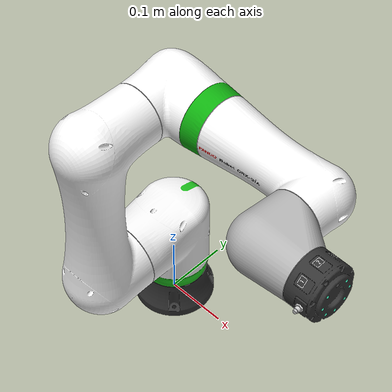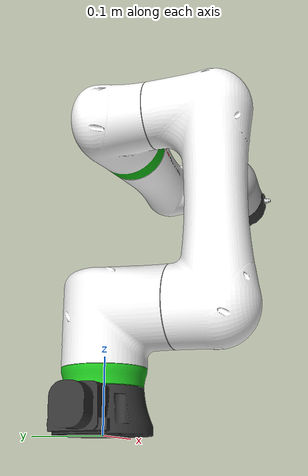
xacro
<?xml version="1.0" ?>
<robot name="crx3ia" xmlns:xacro="http://wiki.ros.org/xacro">
  <xacro:include
    filename="$(find fanuc_crx_description)/urdf/crx3ia_urdf_macro.xacro"
  />

  <link name="world" />
  <link name="ee_link" />
  <xacro:crx3ia parent="world" child="ee_link">
    <origin xyz="0 0 0" rpy="0 0 0" />
  </xacro:crx3ia>
</robot>

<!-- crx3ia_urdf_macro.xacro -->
<!--
SPDX-FileCopyrightText: 2026, FANUC America Corporation
SPDX-FileCopyrightText: 2026, FANUC CORPORATION
SPDX-License-Identifier: Apache-2.0
-->
<!-- URDF for CRX-3iA -->
<robot xmlns:xacro="http://wiki.ros.org/xacro">
  <xacro:macro
    name="crx3ia"
    params="prefix=''
            parent
            *origin
            child"
  >

    <xacro:property name="j1_lower_limit" value="${radians(-200)}" />
    <xacro:property name="j2_lower_limit" value="${radians(-179.999)}" />
    <xacro:property name="j3_lower_limit" value="${radians(-62.7)}" />
    <xacro:property name="j4_lower_limit" value="${radians(-190)}" />
    <xacro:property name="j5_lower_limit" value="${radians(-179.999)}" />
    <xacro:property name="j6_lower_limit" value="${radians(-225)}" />

    <xacro:property name="j1_upper_limit" value="${radians(200)}" />
    <xacro:property name="j2_upper_limit" value="${radians(179.999)}" />
    <xacro:property name="j3_upper_limit" value="${radians(242.7)}" />
    <xacro:property name="j4_upper_limit" value="${radians(190)}" />
    <xacro:property name="j5_upper_limit" value="${radians(179.999)}" />
    <xacro:property name="j6_upper_limit" value="${radians(225)}" />

    <xacro:property name="j1_effort_limit" value="200" />
    <xacro:property name="j2_effort_limit" value="200" />
    <xacro:property name="j3_effort_limit" value="100" />
    <xacro:property name="j4_effort_limit" value="80" />
    <xacro:property name="j5_effort_limit" value="60" />
    <xacro:property name="j6_effort_limit" value="50" />

    <xacro:property name="j1_velocity_limit" value="${radians(130)}" />
    <xacro:property name="j2_velocity_limit" value="${radians(130)}" />
    <xacro:property name="j3_velocity_limit" value="${radians(180)}" />
    <xacro:property name="j4_velocity_limit" value="${radians(225)}" />
    <xacro:property name="j5_velocity_limit" value="${radians(360)}" />
    <xacro:property name="j6_velocity_limit" value="${radians(360)}" />

    <!-- links -->
    <link name="${prefix}base_link">
      <visual>
        <origin xyz="0 0 0" rpy="0 0 0" />
        <geometry>
          <mesh
            filename="package://fanuc_crx_description/meshes/crx3ia/visual/base.dae"
          />
        </geometry>
      </visual>
      <collision>
        <origin xyz="0 0 0" rpy="0 0 0" />
        <geometry>
          <mesh
            filename="package://fanuc_crx_description/meshes/crx3ia/collision/base.stl"
          />
        </geometry>
      </collision>
      <inertial>
        <mass value=" .798" />
        <origin xyz="-.0193 -.00000331  .028" />
        <inertia
          ixx=" .000864"
          ixy="-.000000153"
          ixz=" .0000271"
          iyy=" .00169"
          iyz="-.0000000643"
          izz=" .00211"
        />
      </inertial>
    </link>

    <link name="${prefix}J1_link">
      <visual>
        <origin xyz="0 0 0" rpy="0 0 0" />
        <geometry>
          <mesh
            filename="package://fanuc_crx_description/meshes/crx3ia/visual/j1.dae"
          />
        </geometry>
      </visual>
      <collision>
        <origin xyz="0 0 0" rpy="0 0 0" />
        <geometry>
          <mesh
            filename="package://fanuc_crx_description/meshes/crx3ia/collision/j1.stl"
          />
        </geometry>
      </collision>
      <inertial>
        <mass value=" 1.95" />
        <origin xyz=" .0000000283 -.0201 -.0208" />
        <inertia
          ixx=" .0064"
          ixy="-.00000000462"
          ixz="-.000000000477"
          iyy=" .00508"
          iyz=" .000417"
          izz=" .00468"
        />
      </inertial>
    </link>

    <link name="${prefix}J2_link">
      <visual>
        <origin xyz="0 0 0" rpy="0 0 0" />
        <geometry>
          <mesh
            filename="package://fanuc_crx_description/meshes/crx3ia/visual/j2.dae"
          />
        </geometry>
      </visual>
      <collision>
        <origin xyz="0 0 0" rpy="0 0 0" />
        <geometry>
          <mesh
            filename="package://fanuc_crx_description/meshes/crx3ia/collision/j2.stl"
          />
        </geometry>
      </collision>
      <inertial>
        <mass value=" 4.39" />
        <origin xyz="-.000000223 -.137  .143" />
        <inertia
          ixx=" .0527"
          ixy="-.0000000435"
          ixz="-.0000000196"
          iyy=" .0509"
          iyz="-.00223"
          izz=" .0095"
        />
      </inertial>
    </link>

    <link name="${prefix}J3_link">
      <visual>
        <origin xyz="0 0 0" rpy="0 0 0" />
        <geometry>
          <mesh
            filename="package://fanuc_crx_description/meshes/crx3ia/visual/j3.dae"
          />
        </geometry>
      </visual>
      <collision>
        <origin xyz="0 0 0" rpy="0 0 0" />
        <geometry>
          <mesh
            filename="package://fanuc_crx_description/meshes/crx3ia/collision/j3.stl"
          />
        </geometry>
      </collision>
      <inertial>
        <mass value=" 1.35" />
        <origin xyz=" .0256 -.00533 -.0000033" />
        <inertia
          ixx=" .00222"
          ixy="-.0000977"
          ixz=" .0000000249"
          iyy=" .00319"
          iyz="-.0000000162"
          izz=" .00343"
        />
      </inertial>
    </link>

    <link name="${prefix}J4_link">
      <visual>
        <origin xyz="0 0 0" rpy="0 0 0" />
        <geometry>
          <mesh
            filename="package://fanuc_crx_description/meshes/crx3ia/visual/j4.dae"
          />
        </geometry>
      </visual>
      <collision>
        <origin xyz="0 0 0" rpy="0 0 0" />
        <geometry>
          <mesh
            filename="package://fanuc_crx_description/meshes/crx3ia/collision/j4.stl"
          />
        </geometry>
      </collision>
      <inertial>
        <mass value=" 1.49" />
        <origin xyz=" .207 -.00409  .00000000534" />
        <inertia
          ixx=" .0018"
          ixy=" .000199"
          ixz="-.000000000721"
          iyy=" .00643"
          iyz="-.0000000000442"
          izz=" .0065"
        />
      </inertial>
    </link>

    <link name="${prefix}J5_link">
      <visual>
        <origin xyz="0 0 0" rpy="0 0 0" />
        <geometry>
          <mesh
            filename="package://fanuc_crx_description/meshes/crx3ia/visual/j5.dae"
          />
        </geometry>
      </visual>
      <collision>
        <origin xyz="0 0 0" rpy="0 0 0" />
        <geometry>
          <mesh
            filename="package://fanuc_crx_description/meshes/crx3ia/collision/j5.stl"
          />
        </geometry>
      </collision>
      <inertial>
        <mass value=" .772" />
        <origin xyz=" .0147 -.101  .000000000642" />
        <inertia
          ixx=" .000972"
          ixy=" .0000686"
          ixz=" .000000000119"
          iyy=" .0011"
          iyz="-.000000000368"
          izz=" .00128"
        />
      </inertial>
    </link>

    <link name="${prefix}J6_link">
      <visual>
        <origin xyz="0 0 0" rpy="0 0 0" />
        <geometry>
          <mesh
            filename="package://fanuc_crx_description/meshes/crx3ia/visual/j6.dae"
          />
        </geometry>
      </visual>
      <collision>
        <origin xyz="0 0 0" rpy="0 0 0" />
        <geometry>
          <mesh
            filename="package://fanuc_crx_description/meshes/crx3ia/collision/j6.stl"
          />
        </geometry>
      </collision>
      <inertial>
        <mass value=" .248" />
        <origin xyz=" .0969 -.00117  .00000886" />
        <inertia
          ixx=" .000216"
          ixy="-.000000209"
          ixz=" .00000000991"
          iyy=" .000151"
          iyz="-.00000000377"
          izz=" .000163"
        />
      </inertial>
    </link>

    <!-- joints -->
    <joint name="${prefix}J1" type="revolute">
      <origin xyz=" 0  0  .161" rpy="0 0 0" />
      <parent link="${prefix}base_link" />
      <child link="${prefix}J1_link" />
      <axis xyz=" 0  0  1" />
      <limit
        lower="${j1_lower_limit}"
        upper="${j1_upper_limit}"
        effort="${j1_effort_limit}"
        velocity="${j1_velocity_limit}"
      />
    </joint>

    <joint name="${prefix}J2" type="revolute">
      <origin xyz=" 0  0  0" rpy="0 0 0" />
      <parent link="${prefix}J1_link" />
      <child link="${prefix}J2_link" />
      <axis xyz=" 0  1  0" />
      <limit
        lower="${j2_lower_limit}"
        upper="${j2_upper_limit}"
        effort="${j2_effort_limit}"
        velocity="${j2_velocity_limit}"
      />
    </joint>

    <joint name="${prefix}J3" type="revolute">
      <origin xyz=" 0  0  .28" rpy="0 0 0" />
      <parent link="${prefix}J2_link" />
      <child link="${prefix}J3_link" />
      <axis xyz=" 0 -1  0" />
      <limit
        lower="${j3_lower_limit}"
        upper="${j3_upper_limit}"
        effort="${j3_effort_limit}"
        velocity="${j3_velocity_limit}"
      />
    </joint>

    <joint name="${prefix}J4" type="revolute">
      <origin xyz=" 0  0  0" rpy="0 0 0" />
      <parent link="${prefix}J3_link" />
      <child link="${prefix}J4_link" />
      <axis xyz="-1  0  0" />
      <limit
        lower="${j4_lower_limit}"
        upper="${j4_upper_limit}"
        effort="${j4_effort_limit}"
        velocity="${j4_velocity_limit}"
      />
    </joint>

    <joint name="${prefix}J5" type="revolute">
      <origin xyz=" .28  0  0" rpy="0 0 0" />
      <parent link="${prefix}J4_link" />
      <child link="${prefix}J5_link" />
      <axis xyz=" 0 -1  0" />
      <limit
        lower="${j5_lower_limit}"
        upper="${j5_upper_limit}"
        effort="${j5_effort_limit}"
        velocity="${j5_velocity_limit}"
      />
    </joint>

    <joint name="${prefix}J6" type="revolute">
      <origin xyz=" 0 -.111  0" rpy="0 0 0" />
      <parent link="${prefix}J5_link" />
      <child link="${prefix}J6_link" />
      <axis xyz="-1  0  0" />
      <limit
        lower="${j6_lower_limit}"
        upper="${j6_upper_limit}"
        effort="${j6_effort_limit}"
        velocity="${j6_velocity_limit}"
      />
    </joint>

    <!-- world coords -->
    <link name="${prefix}wbase" />
    <joint name="${prefix}base_link-wbase" type="fixed">
      <origin xyz=" 0  0  .161" rpy="0 0 0" />
      <parent link="${prefix}base_link" />
      <child link="${prefix}wbase" />
    </joint>

    <!-- flange coords -->
    <link name="${prefix}flange" />
    <joint name="${prefix}J6-flange" type="fixed">
      <origin xyz=" .123  0  0" rpy="0 0 0" />
      <parent link="${prefix}J6_link" />
      <child link="${prefix}flange" />
    </joint>

    <!-- FANUC flange coords -->
    <link name="${prefix}fanuc_flange" />
    <joint name="${prefix}flange-fanuc_flange" type="fixed">
      <origin xyz="0 0 0" rpy="${radians( 180)} ${radians(-90)} ${radians( 0)}" />
      <parent link="${prefix}flange" />
      <child link="${prefix}fanuc_flange" />
    </joint>

    <!-- Attach to parent -->
    <joint name="${prefix}base_joint" type="fixed">
      <xacro:insert_block name="origin" />
      <parent link="${parent}" />
      <child link="${prefix}base_link" />
    </joint>

    <!-- Attach child -->
    <joint name="${prefix}child_joint" type="fixed">
      <origin xyz="0 0 0" rpy="0 0 0" />
      <parent link="${prefix}flange" />
      <child link="${child}" />
    </joint>
  </xacro:macro>
</robot>
